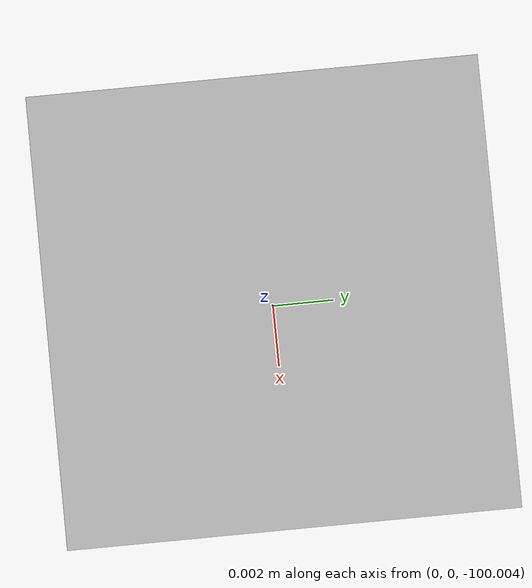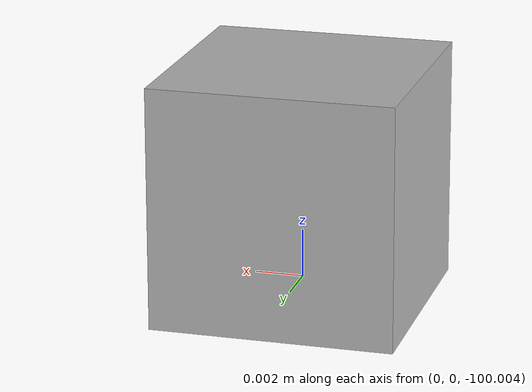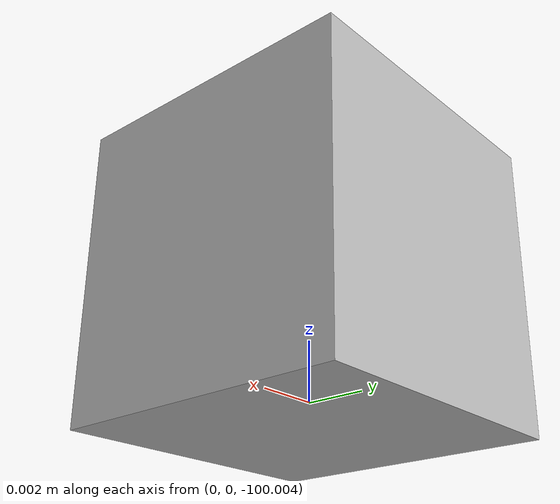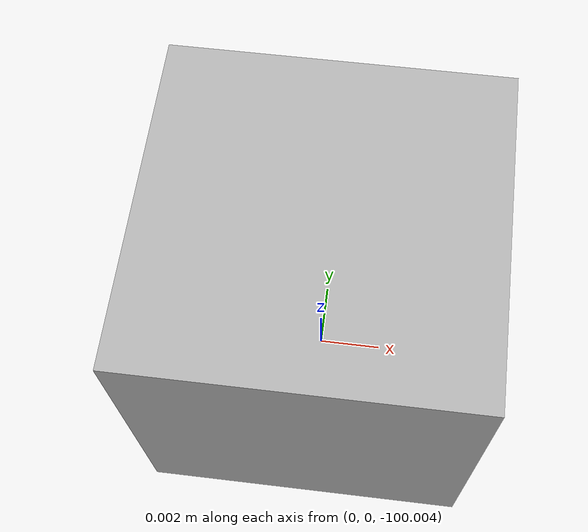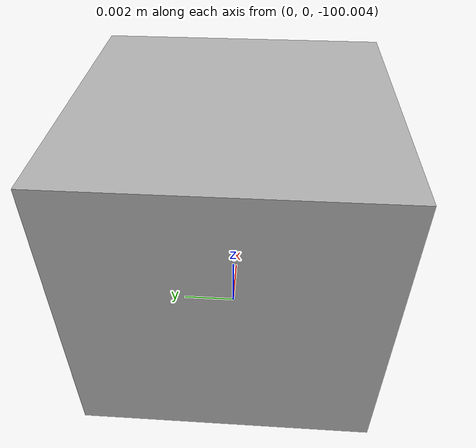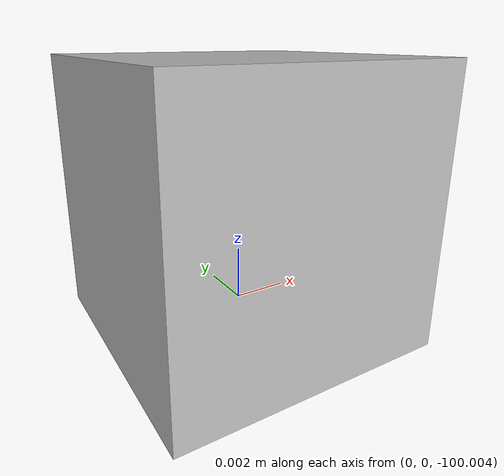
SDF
<?xml version="1.0" encoding="UTF-8"?>
<sdf version="1.9">
  <model name="stack_aruco_textures">
    <static>true</static>
    <!-- Texture bundle only; decals reference model:// URIs -->
    <link name="stub">
      <visual name="hide">
        <pose>0 0 -100 0 0 0</pose>
        <geometry>
          <box>
            <size>0.01 0.01 0.01</size>
          </box>
        </geometry>
      </visual>
    </link>
  </model>
</sdf>
